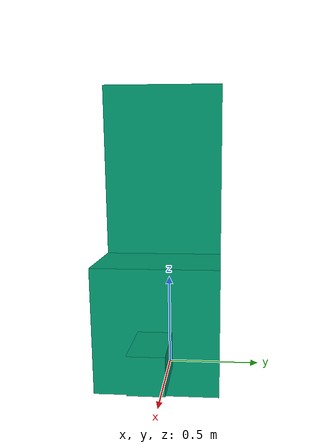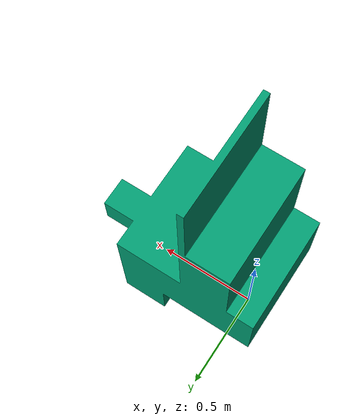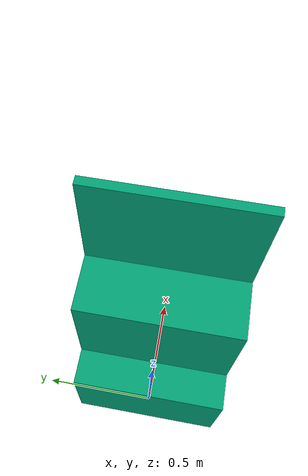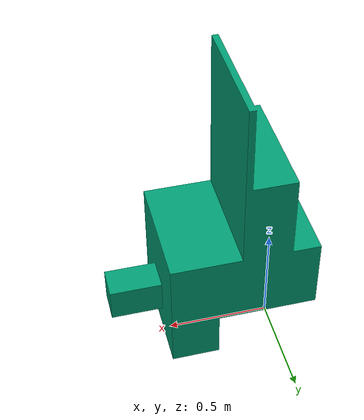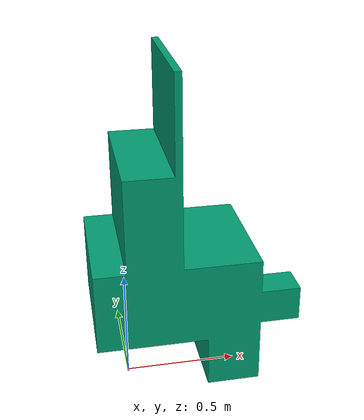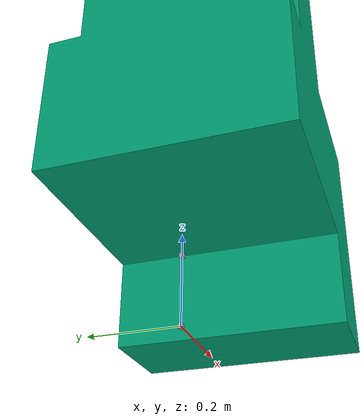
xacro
<?xml version="1.0"?>

<robot name="igvc_platform" xmlns:xacro="http://www.ros.org/wiki/xacro">

  <!-- include other xacro files to use their macros -->
  <xacro:include filename="$(find velodyne_description)/urdf/VLP-16.urdf.xacro"/>

  <!-- passed in parameters -->
  <xacro:arg name="gpu" default="false" />

  <!-- constants -->
  <xacro:property name="M_PI" value="3.1415926535897931" />

  <xacro:property name="chassis_mass" value="32" />

  <!-- wheels -->
  <xacro:property name="drive_tire_diameter" value="0.305"/>
  <xacro:property name="drive_tire_width" value="0.0762"/>
  <!-- TODO set proper mass values -->
  <xacro:property name="drive_wheel_mass" value="5.0"/>

  <xacro:property name="wheelbase" value="0.714333"/>

  <!-- wheel acuator limits -->
  <xacro:property name="drive_wheel_eff_limit" value="8"/>
  <xacro:property name="drive_wheel_vel_limit" value="10"/>

  <!-- drive shock params-->
  <!-- how far the drive wheel shock can move (m)-->
  <xacro:property name="drive_wheel_travel" value="0.1"/>
  <xacro:property name="drive_shock_eff_limit" value="500.0"/>
  <xacro:property name="drive_shock_vel_limit" value="0.1"/>

  <!-- gives small geometry so it show up in rviz -->
  <xacro:macro name="null_link">
    <inertial>
      <mass value="0.001"/>
      <inertia ixx="0.001" ixy="0" ixz="0" iyy="0.001" iyz="0" izz="0.001"/>
    </inertial>
    <visual>
      <geometry>
        <box size="0.01 0.01 0.01"/>
      </geometry>
    </visual>
  </xacro:macro>

  <!-- base of the robot, should be ground level directly below center points of wheels -->
  <link name="base_link">
  <xacro:null_link/>
  </link>
  <gazebo reference="base_link">
  <material>Gazebo/Grey</material>
  </gazebo>

  <link name="base_footprint">
  <xacro:null_link/>
  </link>
  <gazebo reference="base_footprint">
  <material>Gazebo/Grey</material>
  </gazebo>

  <joint name="base_footprint_to_base_link" type="fixed">
  <parent link="base_footprint"/>
  <child link="base_link"/>
  <origin xyz="0.0 0.0 ${drive_tire_diameter / 2}" rpy="0 0 0"/>
  <axis xyz="0 0 0"/>
  </joint>

  <link name="body">
       <inertial>
           <mass value="${chassis_mass}" />
           <origin xyz="0 0 0" rpy="0 0 0"/>
           <!-- approximate the intertial matrix as a sphere -->
           <inertia  ixx="${2 / 5 * chassis_mass * 1 ** 2}" ixy="0.0" ixz="0.0"
                     iyy="${2 / 5 * chassis_mass * 1 ** 2}" iyz="0.0"
                     izz="${2 / 5 * chassis_mass * 1 ** 2}" />
       </inertial>
       <visual>
           <geometry>
               <mesh filename="package://igvc_description/urdf/meshes/jessi_simple.dae"/>
           </geometry>
       </visual>
       <collision>
           <geometry>
               <mesh filename="package://igvc_description/urdf/meshes/jessi_simple.dae"/>
           </geometry>
       </collision>
   </link>

   <joint name="base_link_to_body" type="fixed">
      <parent link="base_link"/>
      <child link="body"/>
      <origin xyz="0.2 0.0 0.17" rpy="0 0 ${M_PI / 2}"/>
      <axis xyz="0 0 0"/>
    </joint>

</robot>
